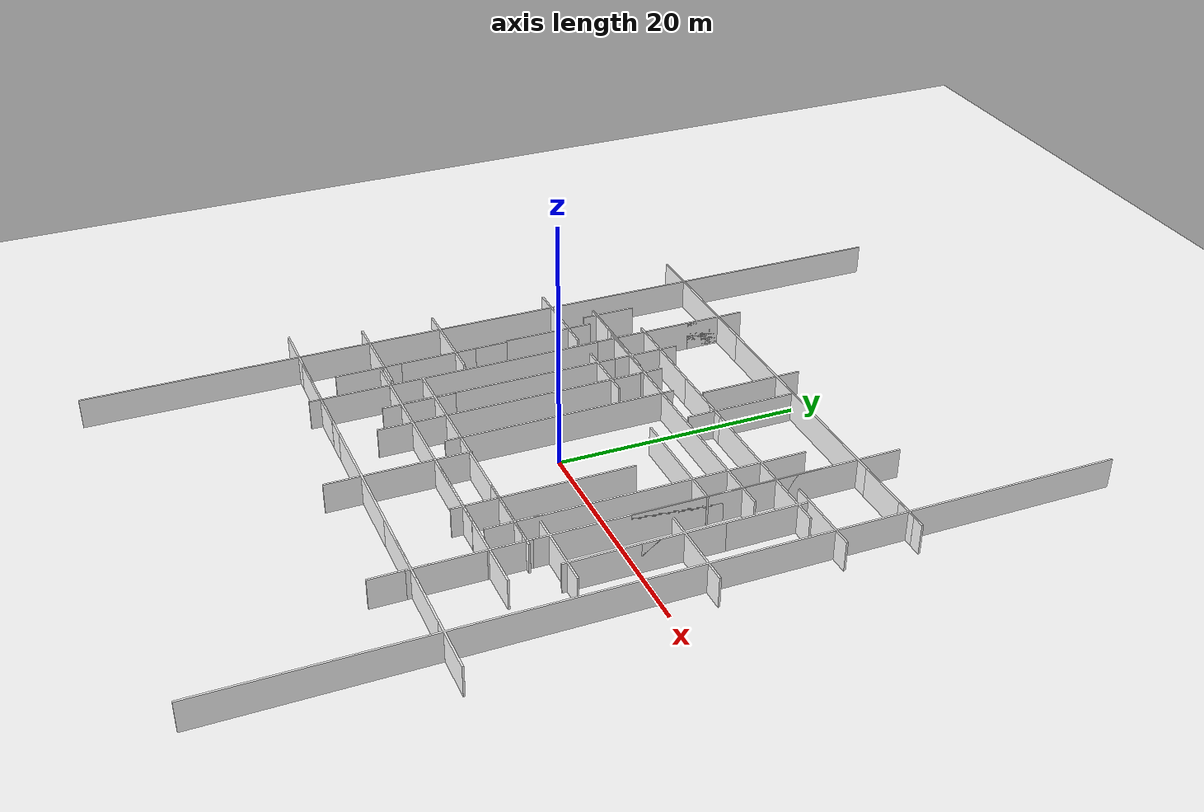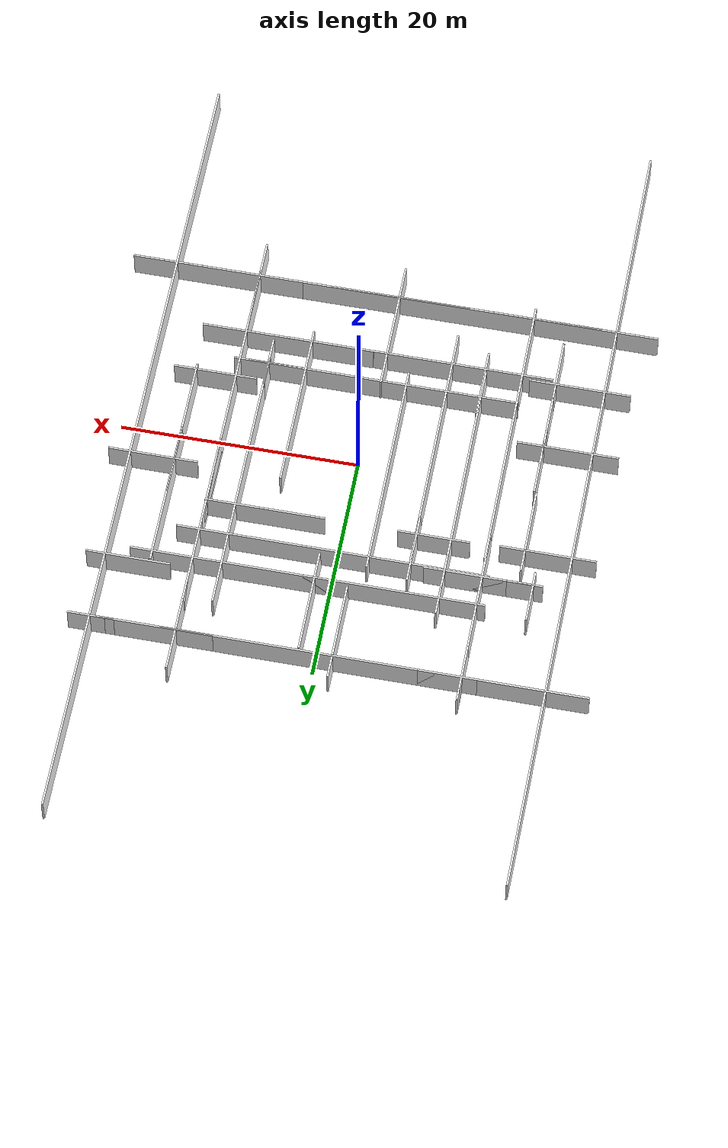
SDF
<sdf version="1.6">
 <world name="default">
  <physics name="1ms" type="ignored">
   <max_step_size>0.001</max_step_size>
   <real_time_factor>1.0</real_time_factor>
  </physics>
  <plugin filename="gz-sim-physics-system" name="gz::sim::systems::Physics">
   <render_engine>gz-physics6-bullet-plugin</render_engine>
  </plugin>
  <plugin filename="gz-sim-user-commands-system" name="gz::sim::systems::UserCommands"/>
  <plugin filename="gz-sim-scene-broadcaster-system" name="gz::sim::systems::SceneBroadcaster"/>
  <plugin filename="gz-sim-sensors-system" name="gz::sim::systems::Sensors">
   <render_engine>ogre2</render_engine>
  </plugin>
  <plugin filename="gz-sim-contact-system" name="gz::sim::systems::Contact"/>
  <light name="sun" type="directional">
   <pose>0 0 10 0 -0 0</pose>
   <diffuse>0.8 0.8 0.8 1</diffuse>
   <specular>0.2 0.2 0.2 1</specular>
   <attenuation>
    <range>1000</range>
    <constant>0.9</constant>
    <linear>0.01</linear>
    <quadratic>0.001</quadratic>
   </attenuation>
   <direction>-0.5 0.1 -0.9</direction>
  </light>
  <model name="ground_plane">
   <static>1</static>
   <link name="link">
    <collision name="collision">
     <geometry><plane><normal>0 0 1</normal><size>100 100</size></plane></geometry>
     <surface>
      <contact><collide_bitmask>65535</collide_bitmask></contact>
      <friction><bullet><mu>100</mu></bullet></friction>
     </surface>
    </collision>
    <visual name="visual">
     <cast_shadows>0</cast_shadows>
     <geometry><plane><normal>0 0 1</normal><size>100 100</size></plane></geometry>
     <material><ambient>1 1 1 1</ambient><diffuse>1 1 1 1</diffuse></material>
    </visual>
   </link>
  </model>
  <gravity>0 0 -9.8</gravity>
  <magnetic_field>6e-06 2.3e-05 -4.2e-05</magnetic_field>
  <atmosphere type="adiabatic"/>
  <physics name="default_physics" default="0" type="ode">
   <max_step_size>0.001</max_step_size>
   <real_time_factor>1</real_time_factor>
   <real_time_update_rate>1000</real_time_update_rate>
   <bullet><friction_model>cone_model</friction_model></bullet>
  </physics>
  <scene><ambient>0.4 0.4 0.4 1</ambient><background>0.7 0.7 0.7 1</background><shadows>1</shadows></scene>
  <spherical_coordinates>
   <surface_model>EARTH_WGS84</surface_model>
   <latitude_deg>0</latitude_deg>
   <longitude_deg>0</longitude_deg>
   <elevation>0</elevation>
   <heading_deg>0</heading_deg>
  </spherical_coordinates>
  <model name="origin_axes">
   <static>true</static>
   <link name="linkX">
    <visual name="x_axis">
     <pose>0.5 0 0 0 1.57 0</pose>
     <geometry><cylinder><radius>0.02</radius><length>1</length></cylinder></geometry>
     <material><ambient>1 0 0 1</ambient><diffuse>1 0 0 1</diffuse></material>
    </visual>
   </link>
   <link name="linkY">
    <visual name="y_axis">
     <pose>0 0.5 0 -1.57 0 0</pose>
     <geometry><cylinder><radius>0.02</radius><length>1</length></cylinder></geometry>
     <material><ambient>0 1 0 1</ambient><diffuse>0 1 0 1</diffuse></material>
    </visual>
   </link>
   <link name="linkZ">
    <visual name="z_axis">
     <pose>0 0 0.5 0 0 1.57</pose>
     <geometry><cylinder><radius>0.02</radius><length>1</length></cylinder></geometry>
     <material><ambient>0 0 1 1</ambient><diffuse>0 0 1 1</diffuse></material>
    </visual>
   </link>
  </model>
  <model name="demo">
   <pose>-0.267831 1.98478 0 0 -0 1.57088</pose>
   <link name="Wall_10">
    <collision name="Wall_10_Collision">
     <geometry><box><size>25.5 0.15 2.5</size></box></geometry>
     <pose>0 0 1.25 0 -0 0</pose>
    </collision>
    <visual name="Wall_10_Visual">
     <pose>0 0 1.25 0 -0 0</pose>
     <geometry><box><size>25.5 0.15 2.5</size></box></geometry>
     <material><ambient>1 1 1 1</ambient><diffuse>1 1 1 1</diffuse></material>
     <meta><layer>0</layer></meta>
    </visual>
    <pose>1.48611 -9.23618 0 0 -0 3.14159</pose>
   </link>
   <link name="Wall_100">
    <collision name="Wall_100_Collision">
     <geometry><box><size>7 0.15 2.5</size></box></geometry>
     <pose>0 0 1.25 0 -0 0</pose>
    </collision>
    <visual name="Wall_100_Visual">
     <pose>0 0 1.25 0 -0 0</pose>
     <geometry><box><size>14 0.15 2.5</size></box></geometry>
     <material><ambient>1 1 1 1</ambient><diffuse>1 1 1 1</diffuse></material>
     <meta><layer>0</layer></meta>
    </visual>
    <pose>17.3507 15.234 0 0 -0 1.5708</pose>
   </link>
   <link name="Wall_101">
    <collision name="Wall_101_Collision">
     <geometry><box><size>70 0.15 2.5</size></box></geometry>
     <pose>0 0 1.25 0 -0 0</pose>
    </collision>
    <visual name="Wall_101_Visual">
     <pose>0 0 1.25 0 -0 0</pose>
     <geometry><box><size>70 0.15 2.5</size></box></geometry>
     <material><ambient>1 1 1 1</ambient><diffuse>1 1 1 1</diffuse></material>
     <meta><layer>0</layer></meta>
    </visual>
    <pose>0.010798 18.6989 0 0 -0 3.13929</pose>
   </link>
   <link name="Wall_104">
    <collision name="Wall_104_Collision">
     <geometry><box><size>14 0.15 2.5</size></box></geometry>
     <pose>0 0 1.25 0 -0 0</pose>
    </collision>
    <visual name="Wall_104_Visual">
     <pose>0 0 1.25 0 -0 0</pose>
     <geometry><box><size>14 0.15 2.5</size></box></geometry>
     <material><ambient>1 1 1 1</ambient><diffuse>1 1 1 1</diffuse></material>
     <meta><layer>0</layer></meta>
    </visual>
    <pose>-17.3392 15.2739 0 0 -0 1.56788</pose>
   </link>
   <link name="Wall_107">
    <collision name="Wall_107_Collision">
     <geometry><box><size>46 0.15 2.5</size></box></geometry>
     <pose>0 0 1.25 0 -0 0</pose>
    </collision>
    <visual name="Wall_107_Visual">
     <pose>0 0 1.25 0 -0 0</pose>
     <geometry><box><size>24.5 0.15 2.5</size></box></geometry>
     <material><ambient>1 1 1 1</ambient><diffuse>1 1 1 1</diffuse></material>
     <meta><layer>0</layer></meta>
    </visual>
    <pose>-6.08605 11.73 0 0 -0 3.14159</pose>
   </link>
   <link name="Wall_111">
    <collision name="Wall_111_Collision">
     <geometry><box><size>8.5 0.15 2.5</size></box></geometry>
     <pose>0 0 1.25 0 -0 0</pose>
    </collision>
    <visual name="Wall_111_Visual">
     <pose>0 0 1.25 0 -0 0</pose>
     <geometry><box><size>8.5 0.15 2.5</size></box></geometry>
     <material><ambient>1 1 1 1</ambient><diffuse>1 1 1 1</diffuse></material>
     <meta><layer>0</layer></meta>
    </visual>
    <pose>-11.3492 16.6603 0 0 -0 -1.5708</pose>
   </link>
   <link name="Wall_112">
    <collision name="Wall_112_Collision">
     <geometry><box><size>5.5 0.15 2.5</size></box></geometry>
     <pose>0 0 1.25 0 -0 0</pose>
    </collision>
    <visual name="Wall_112_Visual">
     <pose>0 0 1.25 0 -0 0</pose>
     <geometry><box><size>5.5 0.15 2.5</size></box></geometry>
     <material><ambient>1 1 1 1</ambient><diffuse>1 1 1 1</diffuse></material>
     <meta><layer>0</layer></meta>
    </visual>
    <pose>-12.6492 14.6103 0 0 -0 3.14159</pose>
   </link>
   <link name="Wall_114">
    <collision name="Wall_114_Collision">
     <geometry><box><size>8.5 0.15 2.5</size></box></geometry>
     <pose>0 0 1.25 0 -0 0</pose>
    </collision>
    <visual name="Wall_114_Visual">
     <pose>0 0 1.25 0 -0 0</pose>
     <geometry><box><size>8.5 0.15 2.5</size></box></geometry>
     <material><ambient>1 1 1 1</ambient><diffuse>1 1 1 1</diffuse></material>
     <meta><layer>0</layer></meta>
    </visual>
    <pose>-5.22807 16.6603 0 0 -0 -1.5708</pose>
   </link>
   <link name="Wall_115">
    <collision name="Wall_115_Collision">
     <geometry><box><size>6.5 0.15 2.5</size></box></geometry>
     <pose>0 0 1.25 0 -0 0</pose>
    </collision>
    <visual name="Wall_115_Visual">
     <pose>0 0 1.25 0 -0 0</pose>
     <geometry><box><size>6.5 0.15 2.5</size></box></geometry>
     <material><ambient>1 1 1 1</ambient><diffuse>1 1 1 1</diffuse></material>
     <meta><layer>0</layer></meta>
    </visual>
    <pose>-6.77807 14.6103 0 0 -0 3.14159</pose>
   </link>
   <link name="Wall_117">
    <collision name="Wall_117_Collision">
     <geometry><box><size>6 0.15 2.5</size></box></geometry>
     <pose>0 0 1.25 0 -0 0</pose>
    </collision>
    <visual name="Wall_117_Visual">
     <pose>0 0 1.25 0 -0 0</pose>
     <geometry><box><size>6 0.15 2.5</size></box></geometry>
     <material><ambient>1 1 1 1</ambient><diffuse>1 1 1 1</diffuse></material>
     <meta><layer>0</layer></meta>
    </visual>
    <pose>-3.80307 14.6103 0 0 -0 0</pose>
   </link>
   <link name="Wall_119">
    <collision name="Wall_119_Collision">
     <geometry><box><size>7.5 0.15 2.5</size></box></geometry>
     <pose>0 0 1.25 0 -0 0</pose>
    </collision>
    <visual name="Wall_119_Visual">
     <pose>0 0 1.25 0 -0 0</pose>
     <geometry><box><size>7.5 0.15 2.5</size></box></geometry>
     <material><ambient>1 1 1 1</ambient><diffuse>1 1 1 1</diffuse></material>
     <meta><layer>0</layer></meta>
    </visual>
    <pose>3.00964 14.8055 0 0 -0 0</pose>
   </link>
   <link name="Wall_126">
    <collision name="Wall_126_Collision">
     <geometry><box><size>8 0.15 2.5</size></box></geometry>
     <pose>0 0 1.25 0 -0 0</pose>
    </collision>
    <visual name="Wall_126_Visual">
     <pose>0 0 1.25 0 -0 0</pose>
     <geometry><box><size>8 0.15 2.5</size></box></geometry>
     <material><ambient>1 1 1 1</ambient><diffuse>1 1 1 1</diffuse></material>
     <meta><layer>0</layer></meta>
    </visual>
    <pose>4.80964 16.7305 0 0 -0 1.5708</pose>
   </link>
   <link name="Wall_128">
    <collision name="Wall_128_Collision">
     <geometry><box><size>6 0.15 2.5</size></box></geometry>
     <pose>0 0 1.25 0 -0 0</pose>
    </collision>
    <visual name="Wall_128_Visual">
     <pose>0 0 1.25 0 -0 0</pose>
     <geometry><box><size>6 0.15 2.5</size></box></geometry>
     <material><ambient>1 1 1 1</ambient><diffuse>1 1 1 1</diffuse></material>
     <meta><layer>0</layer></meta>
    </visual>
    <pose>7.9007 13.234 0 0 -0 1.5708</pose>
   </link>
   <link name="Wall_129">
    <collision name="Wall_129_Collision">
     <geometry><box><size>3 0.15 2.5</size></box></geometry>
     <pose>0 0 1.25 0 -0 0</pose>
    </collision>
    <visual name="Wall_129_Visual">
     <pose>0 0 1.25 0 -0 0</pose>
     <geometry><box><size>3 0.15 2.5</size></box></geometry>
     <material><ambient>1 1 1 1</ambient><diffuse>1 1 1 1</diffuse></material>
     <meta><layer>0</layer></meta>
    </visual>
    <pose>7.9007 15.334 0 0 -0 1.5708</pose>
   </link>
   <link name="Wall_130">
    <collision name="Wall_130_Collision">
     <geometry><box><size>4.5 0.15 2.5</size></box></geometry>
     <pose>0 0 1.25 0 -0 0</pose>
    </collision>
    <visual name="Wall_130_Visual">
     <pose>0 0 1.25 0 -0 0</pose>
     <geometry><box><size>4.5 0.15 2.5</size></box></geometry>
     <material><ambient>1 1 1 1</ambient><diffuse>1 1 1 1</diffuse></material>
     <meta><layer>0</layer></meta>
    </visual>
    <pose>8.9507 16.009 0 0 -0 0</pose>
   </link>
   <link name="Wall_14">
    <collision name="Wall_14_Collision">
     <geometry><box><size>2.5 0.15 2.5</size></box></geometry>
     <pose>0 0 1.25 0 -0 0</pose>
    </collision>
    <visual name="Wall_14_Visual">
     <pose>0 0 1.25 0 -0 0</pose>
     <geometry><box><size>2.5 0.15 2.5</size></box></geometry>
     <material><ambient>1 1 1 1</ambient><diffuse>1 1 1 1</diffuse></material>
     <meta><layer>0</layer></meta>
    </visual>
    <pose>-8.13766 -9.19892 0 0 -0 3.14159</pose>
   </link>
   <link name="Wall_16">
    <collision name="Wall_16_Collision">
     <geometry><box><size>6.5 0.15 2.5</size></box></geometry>
     <pose>0 0 1.25 0 -0 0</pose>
    </collision>
    <visual name="Wall_16_Visual">
     <pose>0 0 1.25 0 -0 0</pose>
     <geometry><box><size>6.5 0.15 2.5</size></box></geometry>
     <material><ambient>1 1 1 1</ambient><diffuse>1 1 1 1</diffuse></material>
     <meta><layer>0</layer></meta>
    </visual>
    <pose>-8.97051 -7.63336 0 0 -0 -1.5708</pose>
   </link>
   <link name="Wall_18">
    <collision name="Wall_18_Collision">
     <geometry><box><size>19 0.15 2.5</size></box></geometry>
     <pose>0 0 1.25 0 -0 0</pose>
    </collision>
    <visual name="Wall_18_Visual">
     <pose>0 0 1.25 0 -0 0</pose>
     <geometry><box><size>19 0.15 2.5</size></box></geometry>
     <material><ambient>1 1 1 1</ambient><diffuse>1 1 1 1</diffuse></material>
     <meta><layer>0</layer></meta>
    </visual>
    <pose>-0.74848 2.42372 0 0 -0 0</pose>
   </link>
   <link name="Wall_20">
    <collision name="Wall_20_Collision">
     <geometry><box><size>14.5 0.15 2.5</size></box></geometry>
     <pose>0 0 1.25 0 -0 0</pose>
    </collision>
    <visual name="Wall_20_Visual">
     <pose>0 0 1.25 0 -0 0</pose>
     <geometry><box><size>14.5 0.15 2.5</size></box></geometry>
     <material><ambient>1 1 1 1</ambient><diffuse>1 1 1 1</diffuse></material>
     <meta><layer>0</layer></meta>
    </visual>
    <pose>-5.44023 -6.0788 0 0 -0 0</pose>
   </link>
   <link name="Wall_22">
    <collision name="Wall_22_Collision">
     <geometry><box><size>6 0.15 2.5</size></box></geometry>
     <pose>0 0 1.25 0 -0 0</pose>
    </collision>
    <visual name="Wall_22_Visual">
     <pose>0 0 1.25 0 -0 0</pose>
     <geometry><box><size>6 0.15 2.5</size></box></geometry>
     <material><ambient>1 1 1 1</ambient><diffuse>1 1 1 1</diffuse></material>
     <meta><layer>0</layer></meta>
    </visual>
    <pose>4.93611 7.28882 0 0 -0 1.5708</pose>
   </link>
   <link name="Wall_23">
    <collision name="Wall_23_Collision">
     <geometry><box><size>22 0.15 2.5</size></box></geometry>
     <pose>0 0 1.25 0 -0 0</pose>
    </collision>
    <visual name="Wall_23_Visual">
     <pose>0 0 1.25 0 -0 0</pose>
     <geometry><box><size>22 0.15 2.5</size></box></geometry>
     <material><ambient>1 1 1 1</ambient><diffuse>1 1 1 1</diffuse></material>
     <meta><layer>0</layer></meta>
    </visual>
    <pose>-0.488893 8.71382 0 0 -0 3.14159</pose>
   </link>
   <link name="Wall_25">
    <collision name="Wall_25_Collision">
     <geometry><box><size>6 0.15 2.5</size></box></geometry>
     <pose>0 0 1.25 0 -0 0</pose>
    </collision>
    <visual name="Wall_25_Visual">
     <pose>0 0 1.25 0 -0 0</pose>
     <geometry><box><size>6 0.15 2.5</size></box></geometry>
     <material><ambient>1 1 1 1</ambient><diffuse>1 1 1 1</diffuse></material>
     <meta><layer>0</layer></meta>
    </visual>
    <pose>-10.2909 8.62897 0 0 -0 3.14159</pose>
   </link>
   <link name="Wall_26">
    <collision name="Wall_26_Collision">
     <geometry><box><size>22.5 0.15 2.5</size></box></geometry>
     <pose>0 0 1.25 0 -0 0</pose>
    </collision>
    <visual name="Wall_26_Visual">
     <pose>0 0 1.25 0 -0 0</pose>
     <geometry><box><size>22.5 0.15 2.5</size></box></geometry>
     <material><ambient>1 1 1 1</ambient><diffuse>1 1 1 1</diffuse></material>
     <meta><layer>0</layer></meta>
    </visual>
    <pose>-11.7159 3.07897 0 0 -0 -1.5708</pose>
   </link>
   <link name="Wall_28">
    <collision name="Wall_28_Collision">
     <geometry><box><size>14.5 0.15 2.5</size></box></geometry>
     <pose>0 0 1.25 0 -0 0</pose>
    </collision>
    <visual name="Wall_28_Visual">
     <pose>0 0 1.25 0 -0 0</pose>
     <geometry><box><size>14.5 0.15 2.5</size></box></geometry>
     <material><ambient>1 1 1 1</ambient><diffuse>1 1 1 1</diffuse></material>
     <meta><layer>0</layer></meta>
    </visual>
    <pose>-11.6993 -8.09105 0 0 -0 -1.5708</pose>
   </link>
   <link name="Wall_31">
    <collision name="Wall_31_Collision">
     <geometry><box><size>11.5 0.15 2.5</size></box></geometry>
     <pose>0 0 1.25 0 -0 0</pose>
    </collision>
    <visual name="Wall_31_Visual">
     <pose>0 0 1.25 0 -0 0</pose>
     <geometry><box><size>11.5 0.15 2.5</size></box></geometry>
     <material><ambient>1 1 1 1</ambient><diffuse>1 1 1 1</diffuse></material>
     <meta><layer>0</layer></meta>
    </visual>
    <pose>-14.5507 0.301111 0 0 -0 3.14159</pose>
   </link>
   <link name="Wall_32">
    <collision name="Wall_32_Collision">
     <geometry><box><size>24 0.15 2.5</size></box></geometry>
     <pose>0 0 1.25 0 -0 0</pose>
    </collision>
    <visual name="Wall_32_Visual">
     <pose>0 0 1.25 0 -0 0</pose>
     <geometry><box><size>24 0.15 2.5</size></box></geometry>
     <material><ambient>1 1 1 1</ambient><diffuse>1 1 1 1</diffuse></material>
     <meta><layer>0</layer></meta>
    </visual>
    <pose>-17.3507 -5.66889 0 0 -0 -1.5708</pose>
   </link>
   <link name="Wall_33">
    <collision name="Wall_33_Collision">
     <geometry><box><size>12 0.15 2.5</size></box></geometry>
     <pose>0 0 1.25 0 -0 0</pose>
    </collision>
    <visual name="Wall_33_Visual">
     <pose>0 0 1.25 0 -0 0</pose>
     <geometry><box><size>12 0.15 2.5</size></box></geometry>
     <material><ambient>1 1 1 1</ambient><diffuse>1 1 1 1</diffuse></material>
     <meta><layer>0</layer></meta>
    </visual>
    <pose>-14.525 -11.64 0 0 -0 -0.000382</pose>
   </link>
   <link name="Wall_35">
    <collision name="Wall_35_Collision">
     <geometry><box><size>10 0.15 2.5</size></box></geometry>
     <pose>0 0 1.25 0 -0 0</pose>
    </collision>
    <visual name="Wall_35_Visual">
     <pose>0 0 1.25 0 -0 0</pose>
     <geometry><box><size>10 0.15 2.5</size></box></geometry>
     <material><ambient>1 1 1 1</ambient><diffuse>1 1 1 1</diffuse></material>
     <meta><layer>0</layer></meta>
    </visual>
    <pose>4.90238 -6.74877 0 0 -0 1.5708</pose>
   </link>
   <link name="Wall_37">
    <collision name="Wall_37_Collision">
     <geometry><box><size>26 0.15 2.5</size></box></geometry>
     <pose>0 0 1.25 0 -0 0</pose>
    </collision>
    <visual name="Wall_37_Visual">
     <pose>0 0 1.25 0 -0 0</pose>
     <geometry><box><size>26 0.15 2.5</size></box></geometry>
     <material><ambient>1 1 1 1</ambient><diffuse>1 1 1 1</diffuse></material>
     <meta><layer>0</layer></meta>
    </visual>
    <pose>7.78611 -0.561178 0 0 -0 -1.5708</pose>
   </link>
   <link name="Wall_39">
    <collision name="Wall_39_Collision">
     <geometry><box><size>15.5 0.15 2.5</size></box></geometry>
     <pose>0 0 1.25 0 -0 0</pose>
    </collision>
    <visual name="Wall_39_Visual">
     <pose>0 0 1.25 0 -0 0</pose>
     <geometry><box><size>15.5 0.15 2.5</size></box></geometry>
     <material><ambient>1 1 1 1</ambient><diffuse>1 1 1 1</diffuse></material>
     <meta><layer>0</layer></meta>
    </visual>
    <pose>6.7007 -11.641 0 0 -0 0</pose>
   </link>
   <link name="Wall_4">
    <collision name="Wall_4_Collision">
     <geometry><box><size>24 0.15 2.5</size></box></geometry>
     <pose>0 0 1.25 0 -0 0</pose>
    </collision>
    <visual name="Wall_4_Visual">
     <pose>0 0 1.25 0 -0 0</pose>
     <geometry><box><size>24 0.15 2.5</size></box></geometry>
     <material><ambient>1 1 1 1</ambient><diffuse>1 1 1 1</diffuse></material>
     <meta><layer>0</layer></meta>
    </visual>
    <pose>-8.97051 -0.133858 0 0 -0 1.5708</pose>
   </link>
   <link name="Wall_41">
    <collision name="Wall_41_Collision">
     <geometry><box><size>5.5 0.15 2.5</size></box></geometry>
     <pose>0 0 1.25 0 -0 0</pose>
    </collision>
    <visual name="Wall_41_Visual">
     <pose>0 0 1.25 0 -0 0</pose>
     <geometry><box><size>5.5 0.15 2.5</size></box></geometry>
     <material><ambient>1 1 1 1</ambient><diffuse>1 1 1 1</diffuse></material>
     <meta><layer>0</layer></meta>
    </visual>
    <pose>9.2007 8.70895 0 0 -0 3.14159</pose>
   </link>
   <link name="Wall_42">
    <collision name="Wall_42_Collision">
     <geometry><box><size>6.5 0.15 2.5</size></box></geometry>
     <pose>0 0 1.25 0 -0 0</pose>
    </collision>
    <visual name="Wall_42_Visual">
     <pose>0 0 1.25 0 -0 0</pose>
     <geometry><box><size>6.5 0.15 2.5</size></box></geometry>
     <material><ambient>1 1 1 1</ambient><diffuse>1 1 1 1</diffuse></material>
     <meta><layer>0</layer></meta>
    </visual>
    <pose>7.9007 10.259 0 0 -0 1.5708</pose>
   </link>
   <link name="Wall_46">
    <collision name="Wall_46_Collision">
     <geometry><box><size>23 0.15 2.5</size></box></geometry>
     <pose>0 0 1.25 0 -0 0</pose>
    </collision>
    <visual name="Wall_46_Visual">
     <pose>0 0 1.25 0 -0 0</pose>
     <geometry><box><size>23 0.15 2.5</size></box></geometry>
     <material><ambient>1 1 1 1</ambient><diffuse>1 1 1 1</diffuse></material>
     <meta><layer>0</layer></meta>
    </visual>
    <pose>-17.35 6.05503 0 0 -0 1.57068</pose>
   </link>
   <link name="Wall_48">
    <collision name="Wall_48_Collision">
     <geometry><box><size>20.5 0.15 2.5</size></box></geometry>
     <pose>0 0 1.25 0 -0 0</pose>
    </collision>
    <visual name="Wall_48_Visual">
     <pose>0 0 1.25 0 -0 0</pose>
     <geometry><box><size>20.5 0.15 2.5</size></box></geometry>
     <material><ambient>1 1 1 1</ambient><diffuse>1 1 1 1</diffuse></material>
     <meta><layer>0</layer></meta>
    </visual>
    <pose>10.5007 -6.59105 0 0 -0 1.5708</pose>
   </link>
   <link name="Wall_5">
    <collision name="Wall_5_Collision">
     <geometry><box><size>22 0.15 2.5</size></box></geometry>
     <pose>0 0 1.25 0 -0 0</pose>
    </collision>
    <visual name="Wall_5_Visual">
     <pose>0 0 1.25 0 -0 0</pose>
     <geometry><box><size>22 0.15 2.5</size></box></geometry>
     <material><ambient>1 1 1 1</ambient><diffuse>1 1 1 1</diffuse></material>
     <meta><layer>0</layer></meta>
    </visual>
    <pose>-3.54551 5.81108 0 0 -0 0</pose>
   </link>
   <link name="Wall_50">
    <collision name="Wall_50_Collision">
     <geometry><box><size>15 0.15 2.5</size></box></geometry>
     <pose>0 0 1.25 0 -0 0</pose>
    </collision>
    <visual name="Wall_50_Visual">
     <pose>0 0 1.25 0 -0 0</pose>
     <geometry><box><size>15 0.15 2.5</size></box></geometry>
     <material><ambient>1 1 1 1</ambient><diffuse>1 1 1 1</diffuse></material>
     <meta><layer>0</layer></meta>
    </visual>
    <pose>10.5007 5.03395 0 0 -0 -1.5708</pose>
   </link>
   <link name="Wall_53">
    <collision name="Wall_53_Collision">
     <geometry><box><size>15.5 0.15 2.5</size></box></geometry>
     <pose>0 0 1.25 0 -0 0</pose>
    </collision>
    <visual name="Wall_53_Visual">
     <pose>0 0 1.25 0 -0 0</pose>
     <geometry><box><size>15.5 0.15 2.5</size></box></geometry>
     <material><ambient>1 1 1 1</ambient><diffuse>1 1 1 1</diffuse></material>
     <meta><layer>0</layer></meta>
    </visual>
    <pose>11.7007 11.809 0 0 -0 0</pose>
   </link>
   <link name="Wall_56">
    <collision name="Wall_56_Collision">
     <geometry><box><size>4 0.15 2.5</size></box></geometry>
     <pose>0 0 1.25 0 -0 0</pose>
    </collision>
    <visual name="Wall_56_Visual">
     <pose>0 0 1.25 0 -0 0</pose>
     <geometry><box><size>4 0.15 2.5</size></box></geometry>
     <material><ambient>1 1 1 1</ambient><diffuse>1 1 1 1</diffuse></material>
     <meta><layer>0</layer></meta>
    </visual>
    <pose>16.4257 11.809 0 0 -0 0</pose>
   </link>
   <link name="Wall_57">
    <collision name="Wall_57_Collision">
     <geometry><box><size>26 0.15 2.5</size></box></geometry>
     <pose>0 0 1.25 0 -0 0</pose>
    </collision>
    <visual name="Wall_57_Visual">
     <pose>0 0 1.25 0 -0 0</pose>
     <geometry><box><size>26 0.15 2.5</size></box></geometry>
     <material><ambient>1 1 1 1</ambient><diffuse>1 1 1 1</diffuse></material>
     <meta><layer>0</layer></meta>
    </visual>
    <pose>17.3507 0.083953 0 0 -0 -1.5708</pose>
   </link>
   <link name="Wall_58">
    <collision name="Wall_58_Collision">
     <geometry><box><size>14 0.15 2.5</size></box></geometry>
     <pose>0 0 1.25 0 -0 0</pose>
    </collision>
    <visual name="Wall_58_Visual">
     <pose>0 0 1.25 0 -0 0</pose>
     <geometry><box><size>14 0.15 2.5</size></box></geometry>
     <material><ambient>1 1 1 1</ambient><diffuse>1 1 1 1</diffuse></material>
     <meta><layer>0</layer></meta>
    </visual>
    <pose>13.9257 -11.641 0 0 -0 3.14159</pose>
   </link>
   <link name="Wall_60">
    <collision name="Wall_60_Collision">
     <geometry><box><size>9 0.15 2.5</size></box></geometry>
     <pose>0 0 1.25 0 -0 0</pose>
    </collision>
    <visual name="Wall_60_Visual">
     <pose>0 0 1.25 0 -0 0</pose>
     <geometry><box><size>9 0.15 2.5</size></box></geometry>
     <material><ambient>1 1 1 1</ambient><diffuse>1 1 1 1</diffuse></material>
     <meta><layer>0</layer></meta>
    </visual>
    <pose>12.6757 -1.54105 0 0 -0 0</pose>
   </link>
   <link name="Wall_65">
    <collision name="Wall_65_Collision">
     <geometry><box><size>8.5 0.15 2.5</size></box></geometry>
     <pose>0 0 1.25 0 -0 0</pose>
    </collision>
    <visual name="Wall_65_Visual">
     <pose>0 0 1.25 0 -0 0</pose>
     <geometry><box><size>8.5 0.15 2.5</size></box></geometry>
     <material><ambient>1 1 1 1</ambient><diffuse>1 1 1 1</diffuse></material>
     <meta><layer>0</layer></meta>
    </visual>
    <pose>15.0616 1.24113 0 0 -0 3.14159</pose>
   </link>
   <link name="Wall_67">
    <collision name="Wall_67_Collision">
     <geometry><box><size>24 0.15 2.5</size></box></geometry>
     <pose>0 0 1.25 0 -0 0</pose>
    </collision>
    <visual name="Wall_67_Visual">
     <pose>0 0 1.25 0 -0 0</pose>
     <geometry><box><size>24 0.15 2.5</size></box></geometry>
     <material><ambient>1 1 1 1</ambient><diffuse>1 1 1 1</diffuse></material>
     <meta><layer>0</layer></meta>
    </visual>
    <pose>-5.7743 -11.641 0 0 -0 0</pose>
   </link>
   <link name="Wall_69">
    <collision name="Wall_69_Collision">
     <geometry><box><size>12 0.15 2.5</size></box></geometry>
     <pose>0 0 1.25 0 -0 0</pose>
    </collision>
    <visual name="Wall_69_Visual">
     <pose>0 0 1.25 0 -0 0</pose>
     <geometry><box><size>12 0.15 2.5</size></box></geometry>
     <material><ambient>1 1 1 1</ambient><diffuse>1 1 1 1</diffuse></material>
     <meta><layer>0</layer></meta>
    </visual>
    <pose>17.3507 -14.566 0 0 -0 -1.5708</pose>
   </link>
   <link name="Wall_77">
    <collision name="Wall_77_Collision">
     <geometry><box><size>14.5 0.15 2.5</size></box></geometry>
     <pose>0 0 1.25 0 -0 0</pose>
    </collision>
    <visual name="Wall_77_Visual">
     <pose>0 0 1.25 0 -0 0</pose>
     <geometry><box><size>14.5 0.15 2.5</size></box></geometry>
     <material><ambient>1 1 1 1</ambient><diffuse>1 1 1 1</diffuse></material>
     <meta><layer>0</layer></meta>
    </visual>
    <pose>-17.3507 -15.1889 0 0 -0 -1.5708</pose>
   </link>
   <link name="Wall_78">
    <collision name="Wall_78_Collision">
     <geometry><box><size>69.7 0.15 2.5</size></box></geometry>
     <pose>0 0 1.25 0 -0 0</pose>
    </collision>
    <visual name="Wall_78_Visual">
     <pose>0 0 1.25 0 -0 0</pose>
     <geometry><box><size>69.7 0.15 2.5</size></box></geometry>
     <material><ambient>1 1 1 1</ambient><diffuse>1 1 1 1</diffuse></material>
     <meta><layer>0</layer></meta>
    </visual>
    <pose>-0.000659 -18.7389 0 0 -0 0</pose>
   </link>
   <link name="Wall_8">
    <collision name="Wall_8_Collision">
     <geometry><box><size>6 0.15 2.5</size></box></geometry>
     <pose>0 0 1.25 0 -0 0</pose>
    </collision>
    <visual name="Wall_8_Visual">
     <pose>0 0 1.25 0 -0 0</pose>
     <geometry><box><size>6 0.15 2.5</size></box></geometry>
     <material><ambient>1 1 1 1</ambient><diffuse>1 1 1 1</diffuse></material>
     <meta><layer>0</layer></meta>
    </visual>
    <pose>6.36111 5.86382 0 0 -0 0</pose>
   </link>
   <link name="Wall_83">
    <collision name="Wall_83_Collision">
     <geometry><box><size>2.79568 0.15 2.5</size></box></geometry>
     <pose>0 0 1.25 0 -0 0</pose>
    </collision>
    <visual name="Wall_83_Visual">
     <pose>0 0 1.25 0 -0 0</pose>
     <geometry><box><size>2.79568 0.15 2.5</size></box></geometry>
     <material><ambient>1 1 1 1</ambient><diffuse>1 1 1 1</diffuse></material>
     <meta><layer>0</layer></meta>
    </visual>
    <pose>17.35 -18.115 0 0 -0 1.56971</pose>
   </link>
   <link name="Wall_85">
    <collision name="Wall_85_Collision">
     <geometry><box><size>7.5 0.15 2.5</size></box></geometry>
     <pose>0 0 1.25 0 -0 0</pose>
    </collision>
    <visual name="Wall_85_Visual">
     <pose>0 0 1.25 0 -0 0</pose>
     <geometry><box><size>7.5 0.15 2.5</size></box></geometry>
     <material><ambient>1 1 1 1</ambient><diffuse>1 1 1 1</diffuse></material>
     <meta><layer>0</layer></meta>
    </visual>
    <pose>1.56903 -16.8068 0 0 -0 1.5708</pose>
   </link>
   <link name="Wall_86">
    <collision name="Wall_86_Collision">
     <geometry><box><size>13 0.15 2.5</size></box></geometry>
     <pose>0 0 1.25 0 -0 0</pose>
    </collision>
    <visual name="Wall_86_Visual">
     <pose>0 0 1.25 0 -0 0</pose>
     <geometry><box><size>13 0.15 2.5</size></box></geometry>
     <material><ambient>1 1 1 1</ambient><diffuse>1 1 1 1</diffuse></material>
     <meta><layer>0</layer></meta>
    </visual>
    <pose>4.74403 -15.0068 0 0 -0 0</pose>
   </link>
   <link name="Wall_88">
    <collision name="Wall_88_Collision">
     <geometry><box><size>12.5 0.15 2.5</size></box></geometry>
     <pose>0 0 1.25 0 -0 0</pose>
    </collision>
    <visual name="Wall_88_Visual">
     <pose>0 0 1.25 0 -0 0</pose>
     <geometry><box><size>12.5 0.15 2.5</size></box></geometry>
     <material><ambient>1 1 1 1</ambient><diffuse>1 1 1 1</diffuse></material>
     <meta><layer>0</layer></meta>
    </visual>
    <pose>-1.48097 -15.0068 0 0 -0 3.14159</pose>
   </link>
   <link name="Wall_92">
    <collision name="Wall_92_Collision">
     <geometry><box><size>7 0.15 2.5</size></box></geometry>
     <pose>0 0 1.25 0 -0 0</pose>
    </collision>
    <visual name="Wall_92_Visual">
     <pose>0 0 1.25 0 -0 0</pose>
     <geometry><box><size>7 0.15 2.5</size></box></geometry>
     <material><ambient>1 1 1 1</ambient><diffuse>1 1 1 1</diffuse></material>
     <meta><layer>0</layer></meta>
    </visual>
    <pose>-7.2673 -13.3717 0 0 -0 -1.5708</pose>
   </link>
   <link name="Wall_95">
    <collision name="Wall_95_Collision">
     <geometry><box><size>7 0.15 2.5</size></box></geometry>
     <pose>0 0 1.25 0 -0 0</pose>
    </collision>
    <visual name="Wall_95_Visual">
     <pose>0 0 1.25 0 -0 0</pose>
     <geometry><box><size>7 0.15 2.5</size></box></geometry>
     <material><ambient>1 1 1 1</ambient><diffuse>1 1 1 1</diffuse></material>
     <meta><layer>0</layer></meta>
    </visual>
    <pose>11.4676 -16.796 0 0 -0 1.5708</pose>
   </link>
   <static>1</static>
  </model>
 </world>
</sdf>
